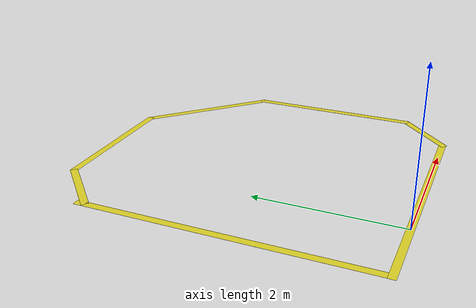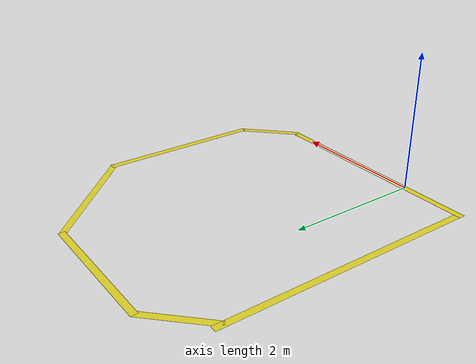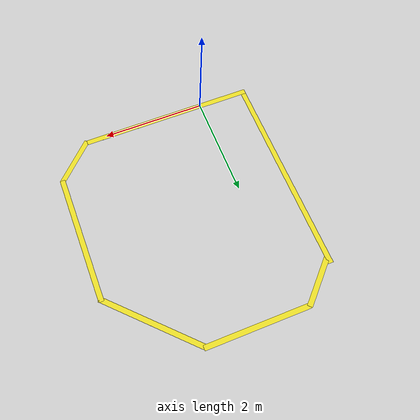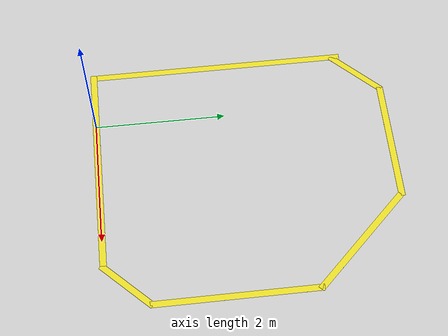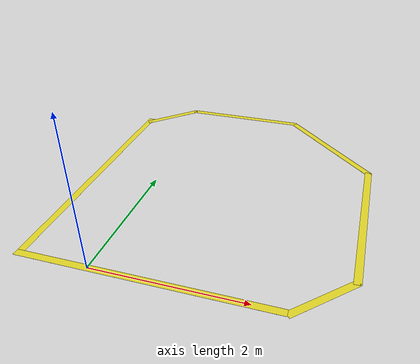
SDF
<sdf version="1.6">
 <world name="default">
  <light name="sun" type="directional">
   <pose>0 0 10 0 -0 0</pose>
   <diffuse>0.8 0.8 0.8 1</diffuse>
   <specular>0.1 0.1 0.1 1</specular>
   <attenuation>
    <range>1000</range>
    <constant>0.9</constant>
    <linear>0.01</linear>
    <quadratic>0.001</quadratic>
   </attenuation>
   <direction>-0.5 0.5 -1</direction>
  </light>
  <gravity>0 0 -9.8</gravity>
  <magnetic_field>6e-06 2.3e-05 -4.2e-05</magnetic_field>
  <atmosphere type="adiabatic"/>
  <physics name="default_physics" default="0" type="ode">
   <max_step_size>0.001</max_step_size>
   <real_time_factor>1</real_time_factor>
   <real_time_update_rate>1000</real_time_update_rate>
  </physics>
  <scene><ambient>0.4 0.4 0.4 1</ambient><background>0.7 0.7 0.7 1</background><shadows>1</shadows></scene>
  <spherical_coordinates>
   <surface_model>EARTH_WGS84</surface_model>
   <latitude_deg>0</latitude_deg>
   <longitude_deg>0</longitude_deg>
   <elevation>0</elevation>
   <heading_deg>0</heading_deg>
  </spherical_coordinates>
  <model name="yellow line_0">
   <static>1</static>
   <link name="link_ground">
    <collision name="collision">
     <geometry><plane><normal>0 0 1</normal><size>0.1 3.4</size></plane></geometry>
     <surface><friction><ode><mu>100</mu><mu2>50</mu2></ode></friction></surface>
    </collision>
    <visual name="visual_ground">
     <cast_shadows>0</cast_shadows>
     <geometry><plane><normal>0 0 1</normal><size>0.1 3.4</size></plane></geometry>
     <material>
      <script><uri>file://media/materials/scripts/gazebo.material</uri><name>Gazebo/Yellow</name></script>
     </material>
    </visual>
   </link>
   <pose>0.7 0 0 0 -0 1.57</pose>
  </model>
  <model name="yellow line_1">
   <static>1</static>
   <link name="link_ground">
    <collision name="collision">
     <geometry><plane><normal>0 0 1</normal><size>0.1 1</size></plane></geometry>
     <surface><friction><ode><mu>100</mu><mu2>50</mu2></ode></friction></surface>
    </collision>
    <visual name="visual_ground">
     <cast_shadows>0</cast_shadows>
     <geometry><plane><normal>0 0 1</normal><size>0.1 1</size></plane></geometry>
     <material>
      <script><uri>file://media/materials/scripts/gazebo.material</uri><name>Gazebo/Yellow</name></script>
     </material>
    </visual>
   </link>
   <pose>2.75 0.32 0 0 0 -0.784999</pose>
  </model>
  <model name="yellow line_2">
   <static>1</static>
   <link name="link_ground">
    <collision name="collision">
     <geometry><plane><normal>0 0 1</normal><size>0.1 2.5</size></plane></geometry>
     <surface><friction><ode><mu>100</mu><mu2>50</mu2></ode></friction></surface>
    </collision>
    <visual name="visual_ground">
     <cast_shadows>0</cast_shadows>
     <geometry><plane><normal>0 0 1</normal><size>0.1 2.5</size></plane></geometry>
     <material>
      <script><uri>file://media/materials/scripts/gazebo.material</uri><name>Gazebo/Yellow</name></script>
     </material>
    </visual>
   </link>
   <pose>3.08297 1.87937 0 0 -0 0</pose>
  </model>
  <model name="yellow line_3">
   <static>1</static>
   <link name="link_ground">
    <collision name="collision">
     <geometry><plane><normal>0 0 1</normal><size>0.1 2</size></plane></geometry>
     <surface><friction><ode><mu>100</mu><mu2>50</mu2></ode></friction></surface>
    </collision>
    <visual name="visual_ground">
     <cast_shadows>0</cast_shadows>
     <geometry><plane><normal>0 0 1</normal><size>0.1 2</size></plane></geometry>
     <material>
      <script><uri>file://media/materials/scripts/gazebo.material</uri><name>Gazebo/Yellow</name></script>
     </material>
    </visual>
   </link>
   <pose>2.4 3.78 0 0 -0 0.785</pose>
  </model>
  <model name="yellow line_4">
   <static>1</static>
   <link name="link_ground">
    <collision name="collision">
     <geometry><plane><normal>0 0 1</normal><size>0.1 2</size></plane></geometry>
     <surface><friction><ode><mu>100</mu><mu2>50</mu2></ode></friction></surface>
    </collision>
    <visual name="visual_ground">
     <cast_shadows>0</cast_shadows>
     <geometry><plane><normal>0 0 1</normal><size>0.1 2</size></plane></geometry>
     <material>
      <script><uri>file://media/materials/scripts/gazebo.material</uri><name>Gazebo/Yellow</name></script>
     </material>
    </visual>
   </link>
   <pose>0.72 4.5 0 0 -0 1.57</pose>
  </model>
  <model name="yellow line_5">
   <static>1</static>
   <link name="link_ground">
    <collision name="collision">
     <geometry><plane><normal>0 0 1</normal><size>0.1 1</size></plane></geometry>
     <surface><friction><ode><mu>100</mu><mu2>50</mu2></ode></friction></surface>
    </collision>
    <visual name="visual_ground">
     <cast_shadows>0</cast_shadows>
     <geometry><plane><normal>0 0 1</normal><size>0.1 1</size></plane></geometry>
     <material>
      <script><uri>file://media/materials/scripts/gazebo.material</uri><name>Gazebo/Yellow</name></script>
     </material>
    </visual>
   </link>
   <pose>-0.6 4.16 0 0 0 -0.785</pose>
  </model>
  <model name="yellow line_7">
   <static>1</static>
   <link name="link_ground">
    <collision name="collision">
     <geometry><plane><normal>0 0 1</normal><size>0.1 3.9</size></plane></geometry>
     <surface><friction><ode><mu>100</mu><mu2>50</mu2></ode></friction></surface>
    </collision>
    <visual name="visual_ground">
     <cast_shadows>0</cast_shadows>
     <geometry><plane><normal>0 0 1</normal><size>0.1 3.9</size></plane></geometry>
     <material>
      <script><uri>file://media/materials/scripts/gazebo.material</uri><name>Gazebo/Yellow</name></script>
     </material>
    </visual>
   </link>
   <pose>-0.94783 2.00 0 0 -0 0</pose>
  </model>
 </world>
</sdf>
